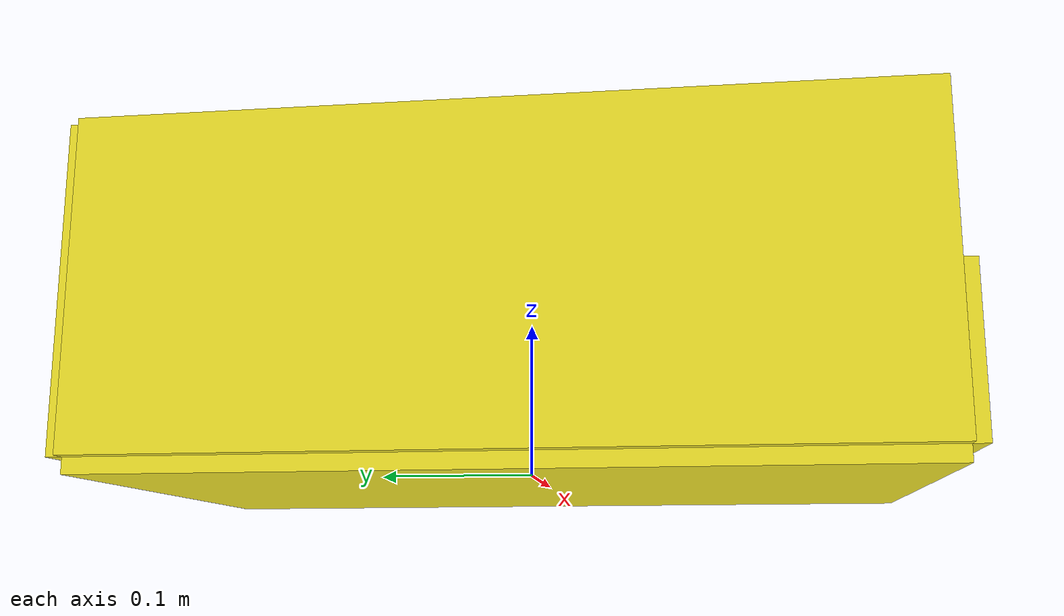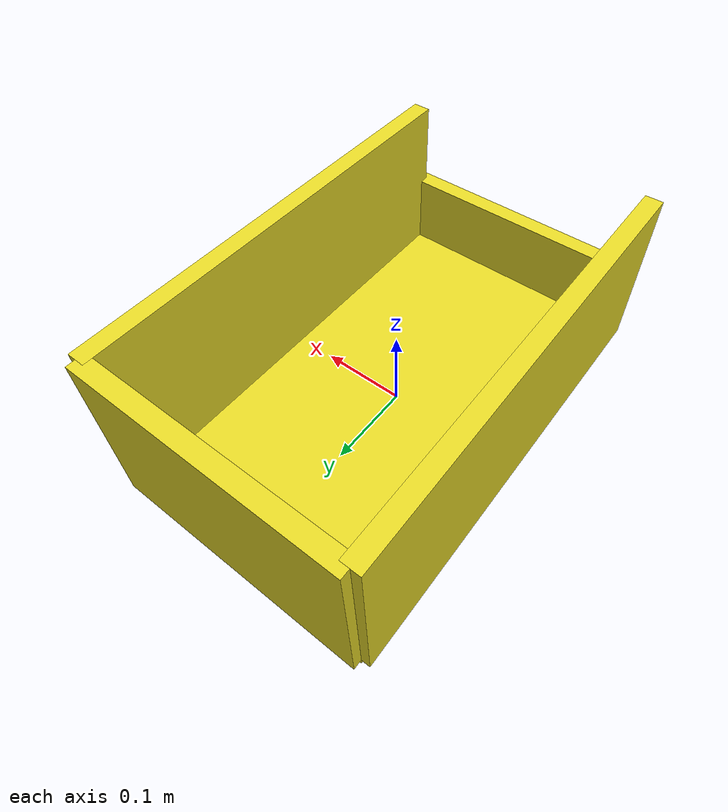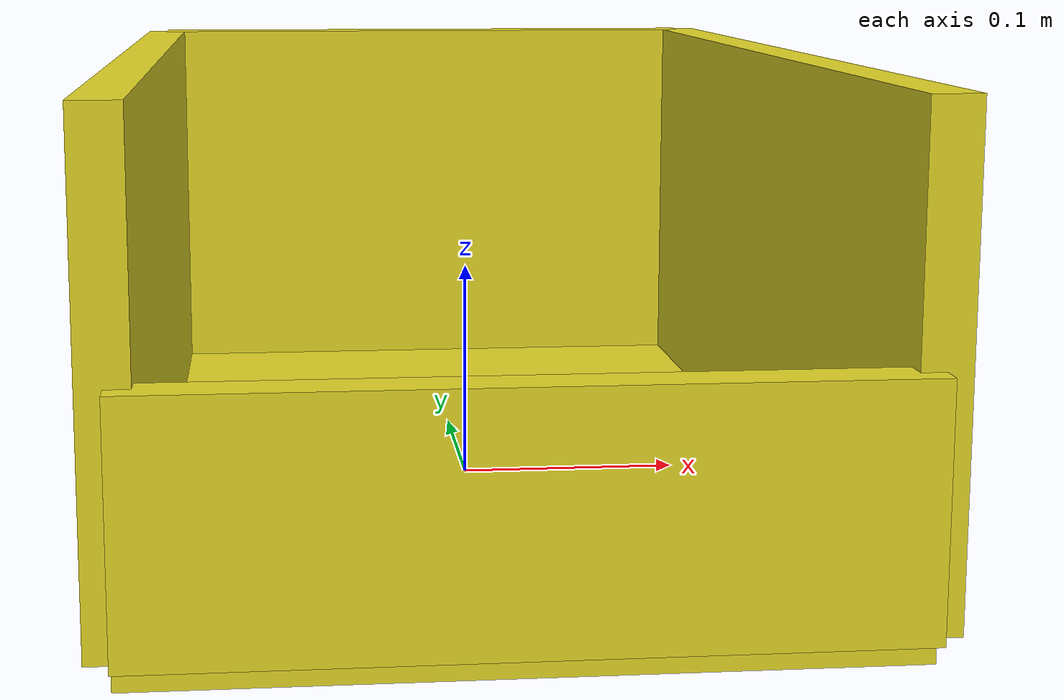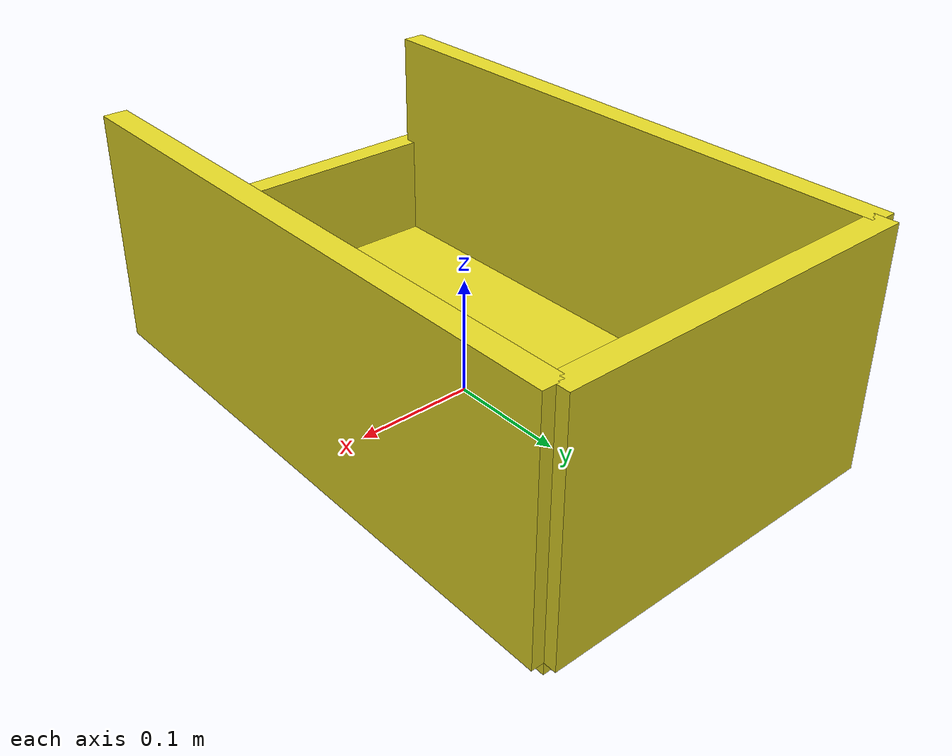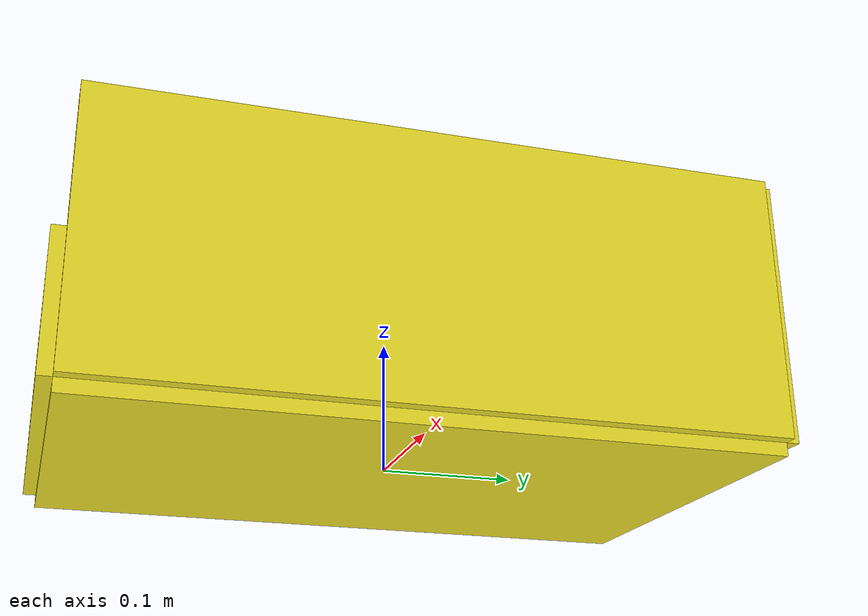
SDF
<?xml version='1.0'?>
<sdf version='1.7'>
  <model name='kit_bin'>
    <link name='link_0'>
      <inertial>
        <mass>1</mass>
        <inertia>
          <ixx>0.166667</ixx>
          <ixy>0</ixy>
          <ixz>0</ixz>
          <iyy>0.166667</iyy>
          <iyz>0</iyz>
          <izz>0.166667</izz>
        </inertia>
        <pose>0 0 0 0 -0 0</pose>
      </inertial>
      <pose>0 0 0 0 -0 0</pose>
      <gravity>1</gravity>
      <self_collide>0</self_collide>
      <kinematic>0</kinematic>
      <enable_wind>0</enable_wind>
      <visual name='ModelPreview_0::link_0::visual_3'>
        <pose>0 0.25 0.1 0 -0 0</pose>
        <geometry>
          <box>
            <size>0.3 0.02 0.2</size>
          </box>
        </geometry>
        <material>
          <lighting>1</lighting>
          <script>
            <uri>file://media/materials/scripts/gazebo.material</uri>
            <name>Gazebo/Yellow</name>
          </script>
          <shader type='pixel'>
            <normal_map>__default__</normal_map>
          </shader>
          <ambient>1 1 0 1</ambient>
          <diffuse>0.7 0.7 0.7 1</diffuse>
          <specular>0.01 0.01 0.01 1</specular>
          <emissive>0 0 0 1</emissive>
        </material>
        <transparency>0</transparency>
        <cast_shadows>1</cast_shadows>
      </visual>
      <visual name='ModelPreview_0::link_0::visual_2'>
        <pose>-0.15 0 0.1 0 -0 0</pose>
        <geometry>
          <box>
            <size>0.02 0.5 0.2</size>
          </box>
        </geometry>
        <material>
          <lighting>1</lighting>
          <script>
            <uri>file://media/materials/scripts/gazebo.material</uri>
            <name>Gazebo/Yellow</name>
          </script>
          <shader type='pixel'>
            <normal_map>__default__</normal_map>
          </shader>
          <ambient>1 1 0 1</ambient>
          <diffuse>0.7 0.7 0.7 1</diffuse>
          <specular>0.01 0.01 0.01 1</specular>
          <emissive>0 0 0 1</emissive>
        </material>
        <transparency>0</transparency>
        <cast_shadows>1</cast_shadows>
      </visual>
      <visual name='ModelPreview_0::link_0::visual_4'>
        <pose>0 -0.25 0.05 0 -0 0</pose>
        <geometry>
          <box>
            <size>0.3 0.02 0.1</size>
          </box>
        </geometry>
        <material>
          <lighting>1</lighting>
          <script>
            <uri>file://media/materials/scripts/gazebo.material</uri>
            <name>Gazebo/Yellow</name>
          </script>
          <shader type='pixel'>
            <normal_map>__default__</normal_map>
          </shader>
          <ambient>1 1 0 1</ambient>
          <diffuse>0.7 0.7 0.7 1</diffuse>
          <specular>0.01 0.01 0.01 1</specular>
          <emissive>0 0 0 1</emissive>
        </material>
        <transparency>0</transparency>
        <cast_shadows>1</cast_shadows>
      </visual>
      <visual name='visual'>
        <pose>0 0 0 0 -0 0</pose>
        <geometry>
          <box>
            <size>0.3 0.5 0.02</size>
          </box>
        </geometry>
        <material>
          <lighting>1</lighting>
          <script>
            <uri>file://media/materials/scripts/gazebo.material</uri>
            <name>Gazebo/Yellow</name>
          </script>
          <shader type='pixel'>
            <normal_map>__default__</normal_map>
          </shader>
          <ambient>1 1 0 1</ambient>
          <diffuse>0.7 0.7 0.7 1</diffuse>
          <specular>0.01 0.01 0.01 1</specular>
          <emissive>0 0 0 1</emissive>
        </material>
        <transparency>0</transparency>
        <cast_shadows>1</cast_shadows>
      </visual>
      <visual name='ModelPreview_0::link_0::visual_1'>
        <pose>0.15 0 0.1 0 -0 0</pose>
        <geometry>
          <box>
            <size>0.02 0.5 0.2</size>
          </box>
        </geometry>
        <material>
          <lighting>1</lighting>
          <script>
            <uri>file://media/materials/scripts/gazebo.material</uri>
            <name>Gazebo/Yellow</name>
          </script>
          <shader type='pixel'>
            <normal_map>__default__</normal_map>
          </shader>
          <ambient>1 1 0 1</ambient>
          <diffuse>0.7 0.7 0.7 1</diffuse>
          <specular>0.01 0.01 0.01 1</specular>
          <emissive>0 0 0 1</emissive>
        </material>
        <transparency>0</transparency>
        <cast_shadows>1</cast_shadows>
      </visual>
      <collision name='collision_5'>
        <laser_retro>0</laser_retro>
        <max_contacts>10</max_contacts>
        <pose>0 -0.25 0.05 0 -0 0</pose>
        <geometry>
          <box>
            <size>0.3 0.02 0.1</size>
          </box>
        </geometry>
        <surface>
          <friction>
            <ode>
              <mu>1</mu>
              <mu2>1</mu2>
              <fdir1>0 0 0</fdir1>
              <slip1>0</slip1>
              <slip2>0</slip2>
            </ode>
            <torsional>
              <coefficient>1</coefficient>
              <patch_radius>0</patch_radius>
              <surface_radius>0</surface_radius>
              <use_patch_radius>1</use_patch_radius>
              <ode>
                <slip>0</slip>
              </ode>
            </torsional>
          </friction>
          <bounce>
            <restitution_coefficient>0</restitution_coefficient>
            <threshold>1e+06</threshold>
          </bounce>
          <contact>
            <collide_without_contact>0</collide_without_contact>
            <collide_without_contact_bitmask>1</collide_without_contact_bitmask>
            <collide_bitmask>1</collide_bitmask>
            <ode>
              <soft_cfm>0</soft_cfm>
              <soft_erp>0.2</soft_erp>
              <kp>1e+13</kp>
              <kd>1</kd>
              <max_vel>0.01</max_vel>
              <min_depth>0</min_depth>
            </ode>
            <bullet>
              <split_impulse>1</split_impulse>
              <split_impulse_penetration_threshold>-0.01</split_impulse_penetration_threshold>
              <soft_cfm>0</soft_cfm>
              <soft_erp>0.2</soft_erp>
              <kp>1e+13</kp>
              <kd>1</kd>
            </bullet>
          </contact>
        </surface>
      </collision>
      <collision name='collision_2'>
        <laser_retro>0</laser_retro>
        <max_contacts>10</max_contacts>
        <pose>0.15 0 0.1 0 -0 0</pose>
        <geometry>
          <box>
            <size>0.02 0.5 0.2</size>
          </box>
        </geometry>
        <surface>
          <friction>
            <ode>
              <mu>1</mu>
              <mu2>1</mu2>
              <fdir1>0 0 0</fdir1>
              <slip1>0</slip1>
              <slip2>0</slip2>
            </ode>
            <torsional>
              <coefficient>1</coefficient>
              <patch_radius>0</patch_radius>
              <surface_radius>0</surface_radius>
              <use_patch_radius>1</use_patch_radius>
              <ode>
                <slip>0</slip>
              </ode>
            </torsional>
          </friction>
          <bounce>
            <restitution_coefficient>0</restitution_coefficient>
            <threshold>1e+06</threshold>
          </bounce>
          <contact>
            <collide_without_contact>0</collide_without_contact>
            <collide_without_contact_bitmask>1</collide_without_contact_bitmask>
            <collide_bitmask>1</collide_bitmask>
            <ode>
              <soft_cfm>0</soft_cfm>
              <soft_erp>0.2</soft_erp>
              <kp>1e+13</kp>
              <kd>1</kd>
              <max_vel>0.01</max_vel>
              <min_depth>0</min_depth>
            </ode>
            <bullet>
              <split_impulse>1</split_impulse>
              <split_impulse_penetration_threshold>-0.01</split_impulse_penetration_threshold>
              <soft_cfm>0</soft_cfm>
              <soft_erp>0.2</soft_erp>
              <kp>1e+13</kp>
              <kd>1</kd>
            </bullet>
          </contact>
        </surface>
      </collision>
      <collision name='collision_4'>
        <laser_retro>0</laser_retro>
        <max_contacts>10</max_contacts>
        <pose>0 0.25 0.1 0 -0 0</pose>
        <geometry>
          <box>
            <size>0.3 0.02 0.2</size>
          </box>
        </geometry>
        <surface>
          <friction>
            <ode>
              <mu>1</mu>
              <mu2>1</mu2>
              <fdir1>0 0 0</fdir1>
              <slip1>0</slip1>
              <slip2>0</slip2>
            </ode>
            <torsional>
              <coefficient>1</coefficient>
              <patch_radius>0</patch_radius>
              <surface_radius>0</surface_radius>
              <use_patch_radius>1</use_patch_radius>
              <ode>
                <slip>0</slip>
              </ode>
            </torsional>
          </friction>
          <bounce>
            <restitution_coefficient>0</restitution_coefficient>
            <threshold>1e+06</threshold>
          </bounce>
          <contact>
            <collide_without_contact>0</collide_without_contact>
            <collide_without_contact_bitmask>1</collide_without_contact_bitmask>
            <collide_bitmask>1</collide_bitmask>
            <ode>
              <soft_cfm>0</soft_cfm>
              <soft_erp>0.2</soft_erp>
              <kp>1e+13</kp>
              <kd>1</kd>
              <max_vel>0.01</max_vel>
              <min_depth>0</min_depth>
            </ode>
            <bullet>
              <split_impulse>1</split_impulse>
              <split_impulse_penetration_threshold>-0.01</split_impulse_penetration_threshold>
              <soft_cfm>0</soft_cfm>
              <soft_erp>0.2</soft_erp>
              <kp>1e+13</kp>
              <kd>1</kd>
            </bullet>
          </contact>
        </surface>
      </collision>
      <collision name='collision_3'>
        <laser_retro>0</laser_retro>
        <max_contacts>10</max_contacts>
        <pose>-0.15 0 0.1 0 -0 0</pose>
        <geometry>
          <box>
            <size>0.02 0.5 0.2</size>
          </box>
        </geometry>
        <surface>
          <friction>
            <ode>
              <mu>1</mu>
              <mu2>1</mu2>
              <fdir1>0 0 0</fdir1>
              <slip1>0</slip1>
              <slip2>0</slip2>
            </ode>
            <torsional>
              <coefficient>1</coefficient>
              <patch_radius>0</patch_radius>
              <surface_radius>0</surface_radius>
              <use_patch_radius>1</use_patch_radius>
              <ode>
                <slip>0</slip>
              </ode>
            </torsional>
          </friction>
          <bounce>
            <restitution_coefficient>0</restitution_coefficient>
            <threshold>1e+06</threshold>
          </bounce>
          <contact>
            <collide_without_contact>0</collide_without_contact>
            <collide_without_contact_bitmask>1</collide_without_contact_bitmask>
            <collide_bitmask>1</collide_bitmask>
            <ode>
              <soft_cfm>0</soft_cfm>
              <soft_erp>0.2</soft_erp>
              <kp>1e+13</kp>
              <kd>1</kd>
              <max_vel>0.01</max_vel>
              <min_depth>0</min_depth>
            </ode>
            <bullet>
              <split_impulse>1</split_impulse>
              <split_impulse_penetration_threshold>-0.01</split_impulse_penetration_threshold>
              <soft_cfm>0</soft_cfm>
              <soft_erp>0.2</soft_erp>
              <kp>1e+13</kp>
              <kd>1</kd>
            </bullet>
          </contact>
        </surface>
      </collision>
      <collision name='collision_1'>
        <laser_retro>0</laser_retro>
        <max_contacts>10</max_contacts>
        <pose>0 0 0 0 -0 0</pose>
        <geometry>
          <box>
            <size>0.3 0.5 0.02</size>
          </box>
        </geometry>
        <surface>
          <friction>
            <ode>
              <mu>1</mu>
              <mu2>1</mu2>
              <fdir1>0 0 0</fdir1>
              <slip1>0</slip1>
              <slip2>0</slip2>
            </ode>
            <torsional>
              <coefficient>1</coefficient>
              <patch_radius>0</patch_radius>
              <surface_radius>0</surface_radius>
              <use_patch_radius>1</use_patch_radius>
              <ode>
                <slip>0</slip>
              </ode>
            </torsional>
          </friction>
          <bounce>
            <restitution_coefficient>0</restitution_coefficient>
            <threshold>1e+06</threshold>
          </bounce>
          <contact>
            <collide_without_contact>0</collide_without_contact>
            <collide_without_contact_bitmask>1</collide_without_contact_bitmask>
            <collide_bitmask>1</collide_bitmask>
            <ode>
              <soft_cfm>0</soft_cfm>
              <soft_erp>0.2</soft_erp>
              <kp>1e+13</kp>
              <kd>1</kd>
              <max_vel>0.01</max_vel>
              <min_depth>0</min_depth>
            </ode>
            <bullet>
              <split_impulse>1</split_impulse>
              <split_impulse_penetration_threshold>-0.01</split_impulse_penetration_threshold>
              <soft_cfm>0</soft_cfm>
              <soft_erp>0.2</soft_erp>
              <kp>1e+13</kp>
              <kd>1</kd>
            </bullet>
          </contact>
        </surface>
      </collision>
    </link>
    <static>0</static>
    <allow_auto_disable>1</allow_auto_disable>
  </model>
</sdf>
